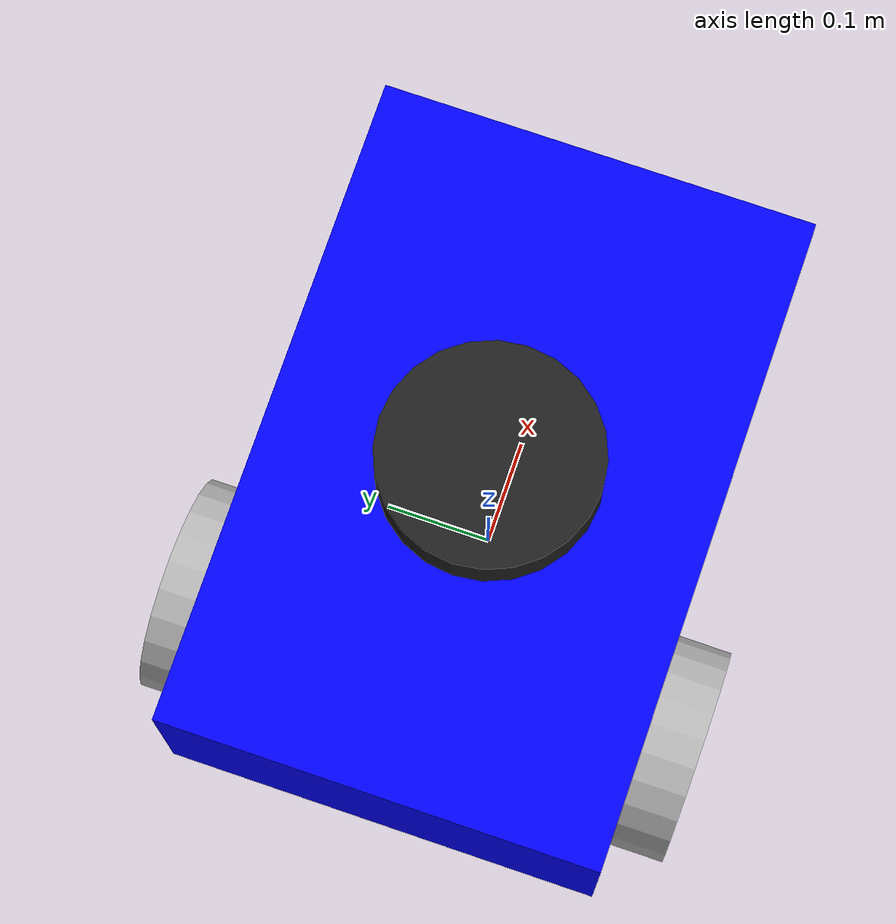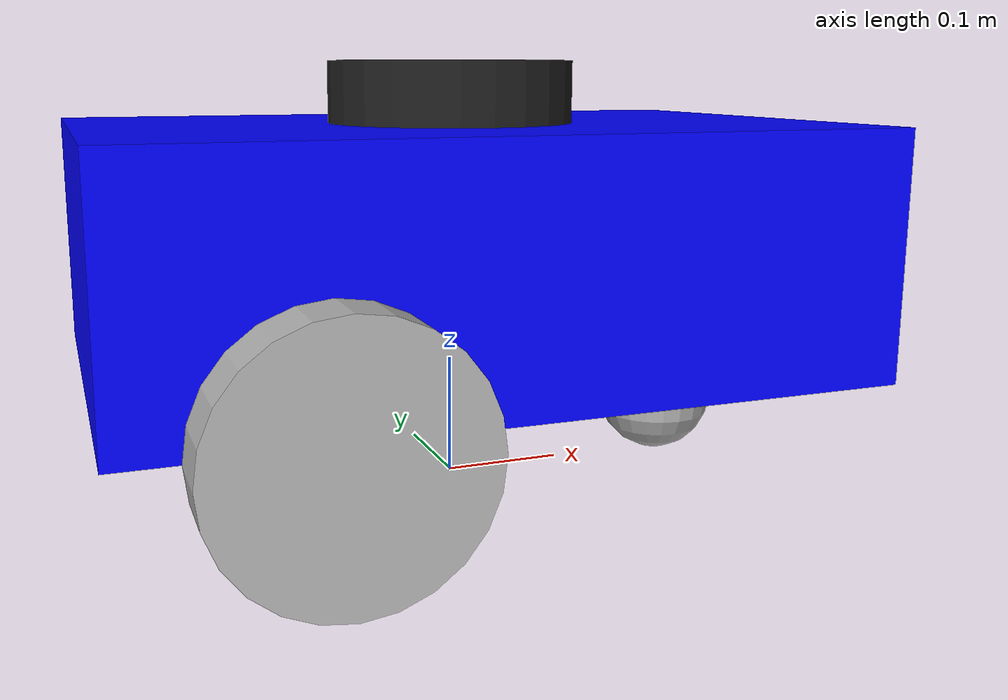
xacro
<?xml version="1.0"?>
<robot name="my_robot" xmlns:xacro="http://www.ros.org/wiki/xacro">

    <xacro:include filename="common_properties.xacro"/>
    <xacro:include filename="mobile_base.xacro"/>
    <xacro:include filename="mobile_base_gazebo.xacro"/>
    <xacro:include filename="camera.xacro"/>

</robot>

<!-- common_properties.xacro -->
<robot xmlns:xacro="http://www.ros.org/wiki/xacro">

    <!--define colors -->
    <material name="grey">
        <color rgba="0.7 0.7 0.7 1"/>
    </material>

    <material name="green">
        <color rgba="0 0.6 0.0 1"/>
    </material>

    <material name="white">
        <color rgba="1 1 1 1" />
    </material>

    <material name="orange">
        <color rgba="1 0.647 0 1"/>
    </material>

    <material name="yellow">
        <color rgba="1 1 0 1"/>
    </material>

    <material name="blue">
        <color rgba="0 0 1 1"/>
    </material>

    <xacro:macro name="box_inertia" params="m l w h xyz rpy">
        <inertial>
            <origin xyz="${xyz}" rpy="${rpy}"/>
            <mass value="${m}"/>
            <inertia ixx = "${(m/12) * (h*h + l*l)}" ixy="0" ixz="0"
                    iyy="${(m/12) * (w*w + l*l)}" iyz="0"
                    izz="${(m/12) * (w*w + h*h)}"/>
        </inertial>
    </xacro:macro>

    <xacro:macro name="wheel_inertia" params="m r h xyz rpy">
        <inertial>
            <origin xyz="${xyz}" rpy="${rpy}"/>
            <mass value="${m}"/>
            <inertia ixx="${(m/12) * (3.0*r*r + h*h)}"  ixy="0" ixz="0"
                    iyy="${(m/12) * (3.0*r*r + h*h)}" iyz="0"
                    izz="${(m/2) * (r*r)}"/>
        </inertial>
    </xacro:macro>

    <xacro:macro name="caster_wheel_inertia" params="m r xyz rpy">
        <inertial>
            <origin xyz="${xyz}" rpy="${rpy}"/>
            <mass value="${m}"/>
            <inertia ixx="${(2/5) * m * r * r}" ixy="0" ixz="0"
                    iyy="${(2/5) * m * r * r}" iyz="0"
                    izz="${(2/5) * m * r * r}"/>
        </inertial>
    </xacro:macro>

</robot>

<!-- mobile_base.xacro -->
<robot xmlns:xacro="http://www.ros.org/wiki/xacro">

    <xacro:property name="base_length" value="0.6"/>
    <xacro:property name="base_width" value="0.4"/>
    <xacro:property name="base_height" value="0.2"/>
    <xacro:property name="wheel_radius" value="0.1"/>
    <xacro:property name="wheel_length" value="0.05"/>

    <!--base footprint-->
    <link name="base_footprint"/>

    <joint name="base_joint" type="fixed">
        <parent link="base_footprint"/>
        <child link="base_link"/>
        <origin xyz="0 0 ${wheel_radius}" rpy="0 0 0"/>
    </joint>

    <!--base link-->
    <link name="base_link">
        <visual>
            <geometry>
                <box size="${base_length} ${base_width} ${base_height}"/>
            </geometry>
            <origin xyz="0 0 ${base_height / 2.0}" rpy="0 0 0"/>
            <material name="blue"/>
        </visual>
        <collision>
            <geometry>
                <box size="${base_length} ${base_width} ${base_height}"/>
            </geometry>
            <origin xyz="0 0 ${base_height / 2.0}" rpy="0 0 0"/>
        </collision>
        <xacro:box_inertia m="5.0" l="${2*base_length}" w="${2*base_width}" h="${2*base_height}"
                            xyz="0 0 ${base_height / 2.0}" rpy="0 0 0"/>
    </link>

    <!--wheel xacro macro-->
    <xacro:macro name="wheel_link" params="prefix">
        <link name="${prefix}_wheel_link">
            <visual>
                <geometry>
                    <cylinder radius="${wheel_radius}" length="${wheel_length}"/>
                </geometry>
                <origin xyz="0 0 0" rpy="${pi / 2.0} 0 0"/>
                <material name="grey"/>
            </visual>
            <collision>
                <geometry>
                    <sphere radius="${wheel_radius}" length="${wheel_length}"/>
                </geometry>
                <origin xyz="0 0 0" rpy="${pi / 2.0} 0 0"/>
            </collision>
            <xacro:wheel_inertia m="1.0" r="${2*wheel_radius}" h="${2*wheel_length}"
                                xyz="0 0 0" rpy="${pi / 2.0} 0 0"/>
        </link>
    </xacro:macro>

    <xacro:wheel_link prefix="right" />
    <xacro:wheel_link prefix="left" />

    <!--left wheel-->

    <joint name="base_left_wheel_joint" type="continuous">
        <parent link="base_link" />
        <child link="left_wheel_link" />
        <origin xyz="${-base_length / 4.0} ${(base_width + wheel_length) / 2.0} 0" rpy="0 0 0"/>
        <axis xyz="0 1 0" />
    </joint>

    <!--right wheel-->

    <joint name="base_right_wheel_joint" type="continuous">
        <parent link="base_link" />
        <child link="right_wheel_link" />
        <origin xyz="${-base_length / 4.0} ${-(base_width + wheel_length) / 2.0} 0" rpy="0 0 0"/>
        <axis xyz="0 1 0" />
    </joint>

    <!--caster wheel-->
    <link name="caster_wheel_link">
        <visual>
            <geometry>
                <sphere radius="${wheel_radius / 2.0}"/>
            </geometry>
            <origin xyz="0 0 0" rpy="0 0 0"/>
            <material name="grey"/>
        </visual>
        <collision>
            <geometry>
                <sphere radius="${wheel_radius / 2.0}"/>
            </geometry>
            <origin xyz="0 0 0" rpy="0 0 0"/>
        </collision>
        <xacro:caster_wheel_inertia m="0.5" r="${2*wheel_radius/2.0}"
                                    xyz="0 0 0" rpy="0 0 0"/>
    </link>

    <joint name="caster_wheel_link" type="fixed">
        <parent link="base_link" />
        <child link="caster_wheel_link" />
        <origin xyz="${base_length/3.0} 0 ${-wheel_radius / 2.0}" rpy="0 0 0"/>
    </joint>

    <!--LiDAR-->
    <link name="lidar_link">
        <visual>
            <geometry>
                <cylinder radius="0.1" length="0.05"/>
            </geometry>
            <material name="black"/>
        </visual>
    <sensor name="lidar_sensor" type="ray">
        <origin xyz="0 0 0"/>
        <ray>
            <scan>
                <horizontal>
                    <samples>360</samples>
                    <resolution>1</resolution>
                    <min_angle>-1.57</min_angle>
                    <max_angle>1.57</max_angle>
                </horizontal>
            </scan>
            <range>
                <min>0.1</min>
                <max>10.0</max>
            </range>
        </ray>
    </sensor>
    </link>

    <joint name="lidar_joint" type="fixed">
        <parent link="base_link"/>
        <child link="lidar_link"/>
        <origin xyz="0 0 0.225"/>
    </joint>

    <!--IMU-->
    <link name="imu_link">
        <visual>
            <geometry>
                <box size="0.05 0.05 0.02"/>
            </geometry>
            <material name="grey"/>
        </visual>
        <sensor name="imu_sensor" type="imu">
            <origin xyz="0 0 0.1"/>
            <imu>
                <always_on>true</always_on>
                <update_rate>50</update_rate>
            </imu>
        </sensor>
    </link>

    <joint name="imu_joint" type="fixed">
        <parent link="base_link"/>
        <child link="imu_link"/>
        <origin xyz="0 0 0.015"/>
    </joint>
</robot>

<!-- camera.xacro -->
<robot xmlns:xacro="http://www.ros.org/wiki/xacro">

    <xacro:property name="camera_length" value="0.01"/>
    <xacro:property name="camera_width" value="0.1"/>
    <xacro:property name="camera_height" value="0.05"/>

    <link name="camera_link">
        <visual>
            <geometry>
                <box size="0.01 0.1 0.05"/>
            </geometry>
            <material name="grey"/>
        </visual>
        <collision>
            <geometry>
                <box size="${camera_length} ${camera_width} ${camera_height}"/>
            </geometry>
        </collision>
        <xacro:box_inertia m="0.1" l="${camera_length}" w="${camera_width}" h="${camera_height}"
                            xyz="0 0 0" rpy="0 0 0"/>
    </link>

    <joint name="base_camera_joint" type="fixed">
        <parent link="base_link"/>
        <child link="camera_link"/>
        <origin xyz="${(base_length + camera_length) /2.0} 0 ${base_height/2}" rpy="0 0 0"/>
    </joint>

    <gazebo reference="camera_link">
        <material>Gazebo/Red</material>
        <sensor name="camera_sensor" type="camera">
            <pose>0 0 0 0 0 0</pose>
            <visualize>true</visualize>
            <update_rate>10.0</update_rate>
            <plugin name="camera_controller" filename="libgazebo_ros_camera.so">
                <frame_name>camera_link</frame_name>
            </plugin>
        </sensor>
    </gazebo>
</robot>
